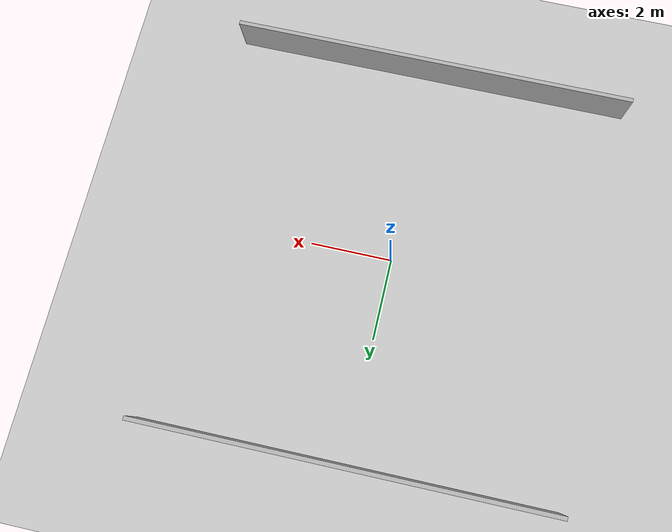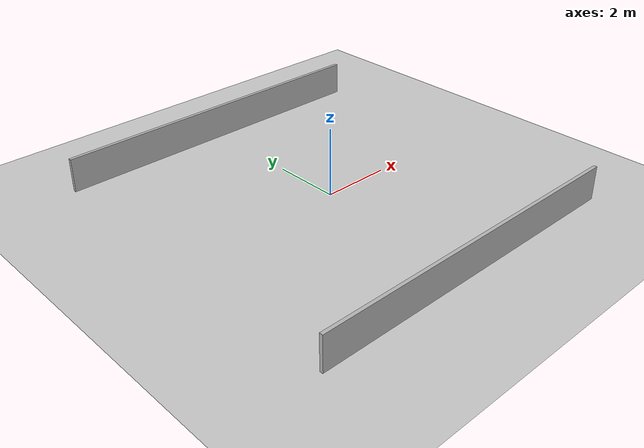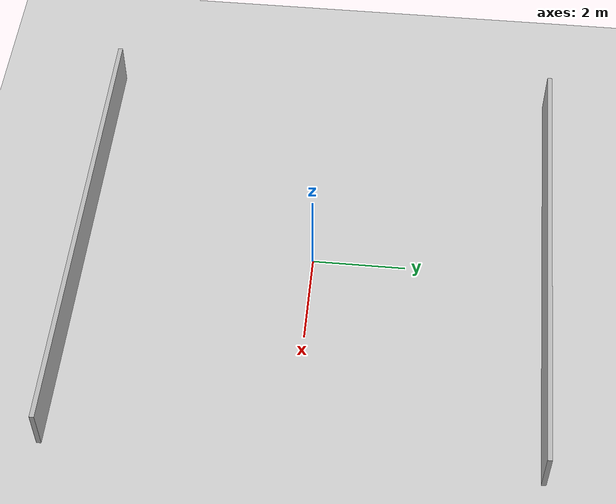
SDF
<?xml version="1.0"?>
<sdf version="1.6">
  <world name="env1_open_10x10">
    <include>
      <uri>model://sun</uri>
    </include>
    <include>
      <uri>model://ground_plane</uri>
    </include>
    <model name="env1_boundary">
      <static>true</static>
      <link name="wall_link">
        <collision name="north">
          <pose>0 5 0.5 0 0 0</pose>
          <geometry><box><size>10 0.1 1</size></box></geometry>
        </collision>
        <visual name="north">
          <pose>0 5 0.5 0 0 0</pose>
          <geometry><box><size>10 0.1 1</size></box></geometry>
        </visual>
        <collision name="south">
          <pose>0 -5 0.5 0 0 0</pose>
          <geometry><box><size>10 0.1 1</size></box></geometry>
        </collision>
        <visual name="south">
          <pose>0 -5 0.5 0 0 0</pose>
          <geometry><box><size>10 0.1 1</size></box></geometry>
        </visual>
      </link>
    </model>
  </world>
</sdf>
